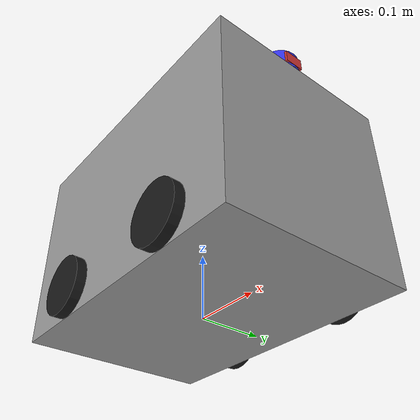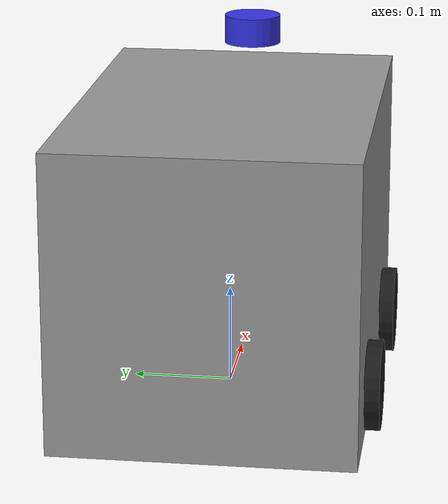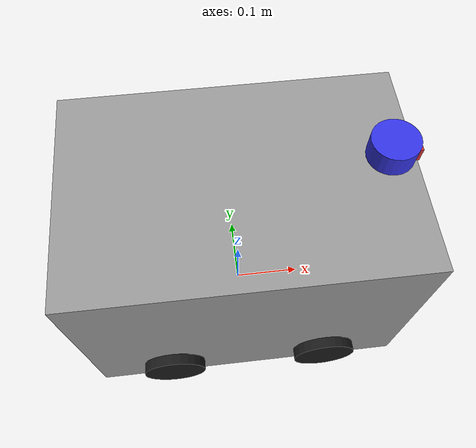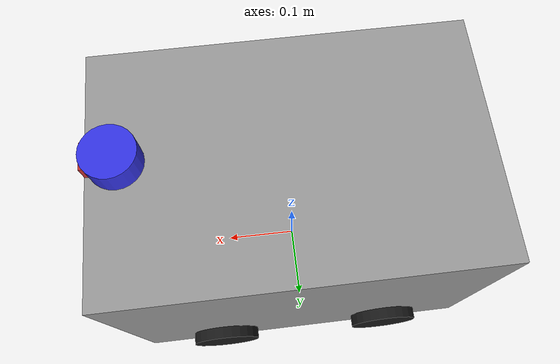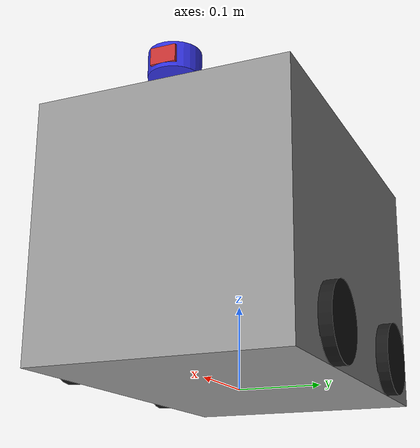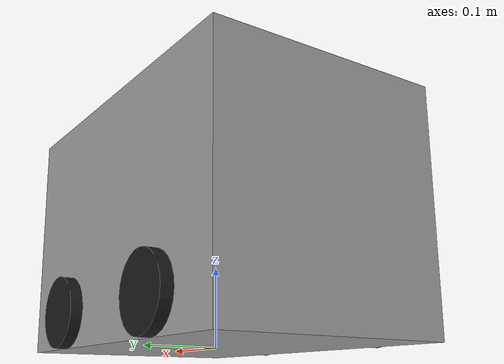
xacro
<?xml version="1.0"?>
<robot name="limo_car" xmlns:xacro="http://www.ros.org/wiki/xacro">

  <!-- Parameters -->
  <xacro:property name="wheel_radius" value="0.045"/>
  <xacro:property name="wheel_width"  value="0.030"/>
  <xacro:property name="wheel_separation" value="0.30"/>

  <xacro:property name="base_length" value="0.45"/>
  <xacro:property name="base_width"  value="0.30"/>
  <xacro:property name="base_height" value="0.30"/>
  <xacro:property name="base_mass"   value="4.50"/>

  <xacro:property name="base_clearance" value="0.02"/>       <!-- 2 cm -->

  <xacro:property name="wheel_mass" value="0.45"/>

  <xacro:property name="lidar_height" value="0.03"/>
  <xacro:property name="lidar_radius" value="0.03"/>

  <!-- LiDAR position: top front of the base -->
  <xacro:property name="lidar_x" value="${(base_length/2.0) - 0.04}"/>
  <xacro:property name="lidar_y" value="0.0"/>
  <xacro:property name="lidar_z" value="${base_clearance + base_height + (lidar_height/2.0)}"/>

  <!-- Base link -->
  <link name="base_link">
    <visual>
      <origin xyz="0 0 ${base_height/2.0}" rpy="0 0 0"/>
      <geometry>
        <box size="${base_length} ${base_width} ${base_height}"/>
      </geometry>
      <material name="Grey">
        <color rgba="0.6 0.6 0.6 1.0"/>
      </material>
    </visual>

    <collision>
      <origin xyz="0 0 ${base_height/2.0}" rpy="0 0 0"/>
      <geometry>
        <box size="${base_length} ${base_width} ${base_height}"/>
      </geometry>
    </collision>

    <inertial>
      <origin xyz="0 0 ${base_height/2.0}" rpy="0 0 0"/>
      <mass value="${base_mass}"/>
      <inertia ixx="0.06" ixy="0.0" ixz="0.0" iyy="0.10" iyz="0.0" izz="0.12"/>
    </inertial>
  </link>

  <!-- Reusable wheel macro -->
  <!-- Important: cylinder axis is Z, so we rotate it by +90 deg about X to align with Y axle -->
  <xacro:macro name="wheel" params="prefix x y">
    <link name="${prefix}_wheel_link">
      <visual>
        <origin xyz="0 0 0" rpy="1.57079632679 0 0"/>
        <geometry>
          <cylinder radius="${wheel_radius}" length="${wheel_width}"/>
        </geometry>
        <material name="Black">
          <color rgba="0.1 0.1 0.1 1.0"/>
        </material>
      </visual>

      <collision>
        <origin xyz="0 0 0" rpy="1.57079632679 0 0"/>
        <geometry>
          <cylinder radius="${wheel_radius}" length="${wheel_width}"/>
        </geometry>
      </collision>

      <inertial>
        <mass value="${wheel_mass}"/>
        <inertia ixx="0.001" ixy="0.0" ixz="0.0" iyy="0.001" iyz="0.0" izz="0.001"/>
      </inertial>
    </link>

    <joint name="${prefix}_wheel_joint" type="continuous">
      <origin xyz="${x} ${y} ${wheel_radius}" rpy="0 0 0"/>
      <parent link="base_link"/>
      <child link="${prefix}_wheel_link"/>
      <axis xyz="0 1 0"/>
    </joint>
  </xacro:macro>

  <!-- Four wheels -->
  <xacro:wheel prefix="front_left"  x="${base_length/4.0}"  y="${wheel_separation/2.0}"/>
  <xacro:wheel prefix="front_right" x="${base_length/4.0}"  y="-${wheel_separation/2.0}"/>
  <xacro:wheel prefix="rear_left"   x="-${base_length/4.0}" y="${wheel_separation/2.0}"/>
  <xacro:wheel prefix="rear_right"  x="-${base_length/4.0}" y="-${wheel_separation/2.0}"/>

  <!-- LiDAR link -->
  <link name="lidar_link">
    <visual>
      <origin xyz="0 0 0" rpy="0 0 0"/>
      <geometry>
        <cylinder radius="${lidar_radius}" length="${lidar_height}"/>
      </geometry>
      <material name="Blue">
        <color rgba="0.2 0.2 0.9 1.0"/>
      </material>
    </visual>

    <!-- tiny collision avoids sensor rays starting inside geometry -->
    <collision>
      <origin xyz="0 0 0" rpy="0 0 0"/>
      <geometry>
        <box size="0.01 0.01 0.01"/>
      </geometry>
    </collision>

    <inertial>
      <mass value="0.10"/>
      <inertia ixx="0.0001" ixy="0" ixz="0" iyy="0.0001" iyz="0" izz="0.0001"/>
    </inertial>
  </link>

  <joint name="lidar_joint" type="fixed">
    <origin xyz="${lidar_x} ${lidar_y} ${lidar_z}" rpy="0 0 0"/>
    <parent link="base_link"/>
    <child link="lidar_link"/>
  </joint>

  <!-- Gazebo LiDAR sensor (separate top-level block, not nested) -->
  <gazebo reference="lidar_link">
    <sensor name="lidar" type="ray">
      <always_on>true</always_on>
      <update_rate>10</update_rate>
      <visualize>true</visualize>

      <ray>
        <scan>
          <horizontal>
            <samples>720</samples>
            <resolution>1</resolution>
            <min_angle>-1.57079632679</min_angle>
            <max_angle>1.57079632679</max_angle>
          </horizontal>
        </scan>

        <range>
          <min>0.12</min>
          <max>8.0</max>
          <resolution>0.01</resolution>
        </range>
      </ray>

      <plugin name="gazebo_ros_lidar" filename="libgazebo_ros_ray_sensor.so">
        <ros>
          <namespace>/</namespace>
          <remapping>~/out:=/scan</remapping>

        </ros>
        <output_type>sensor_msgs/LaserScan</output_type>
        <frame_name>lidar_link</frame_name>
      </plugin>
    </sensor>
  </gazebo>

  <!-- Gazebo plugins -->
  <gazebo>

    <!-- Front axle drive -->
    <plugin name="front_diff_drive" filename="libgazebo_ros_diff_drive.so">
      <update_rate>50</update_rate>

      <left_joint>front_left_wheel_joint</left_joint>
      <right_joint>front_right_wheel_joint</right_joint>

      <wheel_separation>${wheel_separation}</wheel_separation>
      <wheel_diameter>${2.0 * wheel_radius}</wheel_diameter>

      <max_wheel_torque>20</max_wheel_torque>
      <max_wheel_acceleration>10.0</max_wheel_acceleration>

      <command_topic>cmd_vel</command_topic>

      <publish_odom>true</publish_odom>
      <publish_odom_tf>true</publish_odom_tf>
      <publish_wheel_tf>false</publish_wheel_tf>

      <odometry_topic>odom</odometry_topic>
      <odometry_frame>odom</odometry_frame>
      <robot_base_frame>base_link</robot_base_frame>
    </plugin>

    <!-- Rear axle drive -->
    <plugin name="rear_diff_drive" filename="libgazebo_ros_diff_drive.so">
      <update_rate>50</update_rate>

      <left_joint>rear_left_wheel_joint</left_joint>
      <right_joint>rear_right_wheel_joint</right_joint>

      <wheel_separation>${wheel_separation}</wheel_separation>
      <wheel_diameter>${2.0 * wheel_radius}</wheel_diameter>

      <max_wheel_torque>20</max_wheel_torque>
      <max_wheel_acceleration>10.0</max_wheel_acceleration>

      <command_topic>cmd_vel</command_topic>

      <!-- Do not publish odom twice -->
      <publish_odom>true</publish_odom>
      <publish_odom_tf>true</publish_odom_tf>
      <publish_wheel_tf>false</publish_wheel_tf>

      <odometry_topic>odom</odometry_topic>
      <odometry_frame>odom</odometry_frame>
      <robot_base_frame>base_link</robot_base_frame>
    </plugin>

    <!-- Joint states for all wheels -->
    <plugin name="joint_state_publisher" filename="libgazebo_ros_joint_state_publisher.so">
      <update_rate>50</update_rate>
      <joint_name>front_left_wheel_joint</joint_name>
      <joint_name>front_right_wheel_joint</joint_name>
      <joint_name>rear_left_wheel_joint</joint_name>
      <joint_name>rear_right_wheel_joint</joint_name>
    </plugin>

  </gazebo>

  <!-- Camera parameters -->
  <xacro:property name="camera_width"  value="0.04"/>
  <xacro:property name="camera_height" value="0.03"/>
  <xacro:property name="camera_depth"  value="0.02"/>

  <!-- Place the camera at the front, slightly above the base and below the LiDAR -->
  <xacro:property name="camera_x" value="${(base_length/2.0) - 0.03}"/>
  <xacro:property name="camera_y" value="0.0"/>
  <xacro:property name="camera_z" value="${base_clearance + base_height + (camera_height/2.0)}"/>

  <!-- Camera link -->
  <link name="camera_link">
    <visual>
      <origin xyz="0 0 0" rpy="0 0 0"/>
      <geometry>
        <box size="${camera_width} ${camera_height} ${camera_depth}"/>
      </geometry>
      <material name="Red">
        <color rgba="0.8 0.2 0.2 1.0"/>
      </material>
    </visual>

    <collision>
      <origin xyz="0 0 0" rpy="0 0 0"/>
      <geometry>
        <box size="${camera_width} ${camera_height} ${camera_depth}"/>
      </geometry>
    </collision>

    <inertial>
      <mass value="0.05"/>
      <inertia ixx="0.0001" ixy="0" ixz="0" iyy="0.0001" iyz="0" izz="0.0001"/>
    </inertial>
  </link>

  <joint name="camera_joint" type="fixed">
    <origin xyz="${camera_x} ${camera_y} ${camera_z}" rpy="0 0 0"/>
    <parent link="base_link"/>
    <child link="camera_link"/>
  </joint>

  <!-- Camera sensor plugin -->
  <gazebo reference="camera_link">
    <sensor name="camera" type="camera">
      <always_on>true</always_on>
      <update_rate>30</update_rate>
      <visualize>false</visualize>

      <camera>
        <horizontal_fov>1.0472</horizontal_fov>   <!-- 60 degrees in radians -->
        <image>
          <width>640</width>
          <height>480</height>
          <format>R8G8B8</format>
        </image>
        <clip>
          <near>0.1</near>
          <far>100.0</far>
        </clip>
      </camera>

      <plugin name="gazebo_ros_camera" filename="libgazebo_ros_camera.so">
        <ros>
          <namespace>/</namespace>
          <remapping>~/image_raw:=/camera/image_raw</remapping>
          <remapping>~/camera_info:=/camera/camera_info</remapping>
        </ros>
        <frame_name>camera_link</frame_name>
        <hack_baseline>0.07</hack_baseline>
      </plugin>
    </sensor>
  </gazebo>

</robot>
